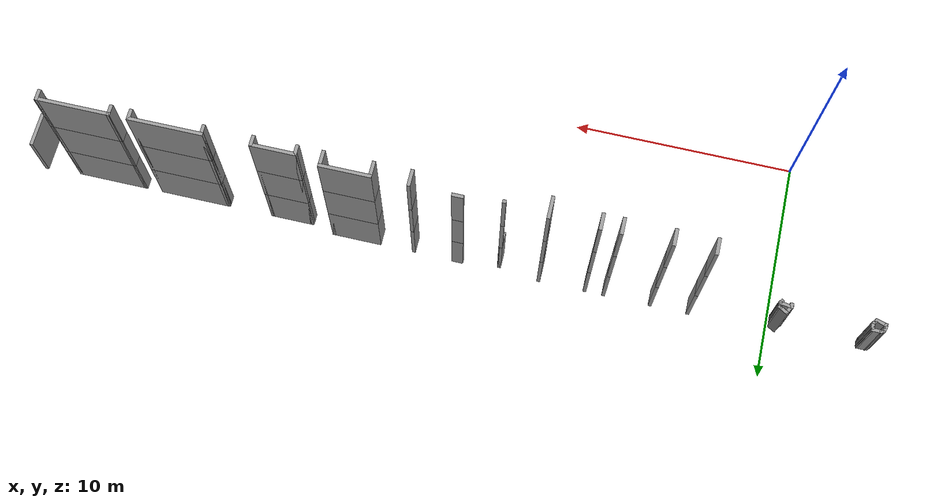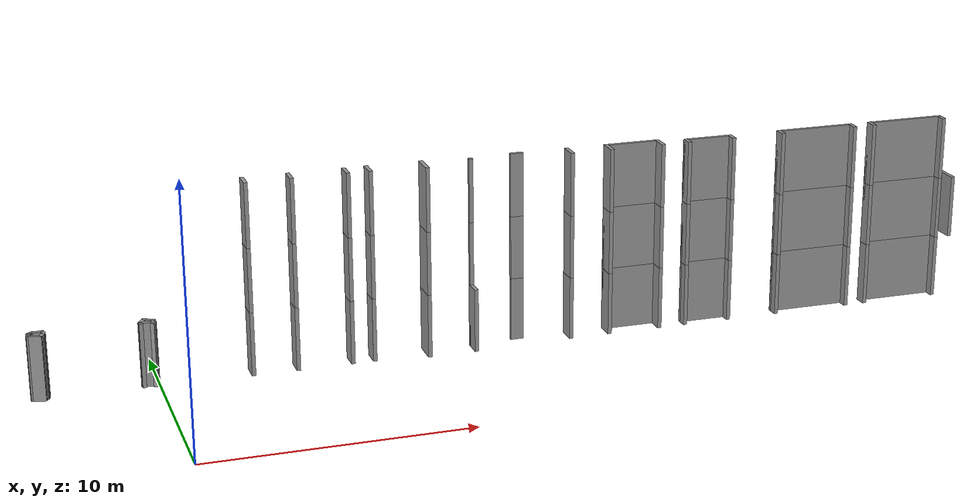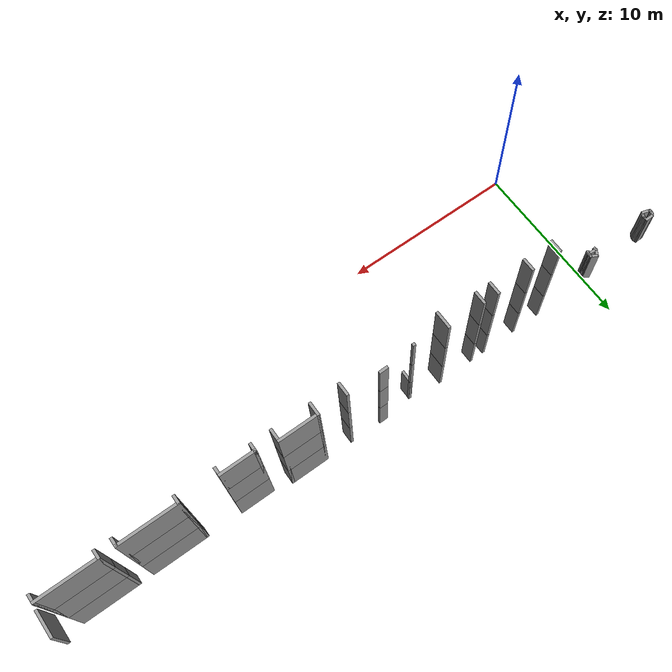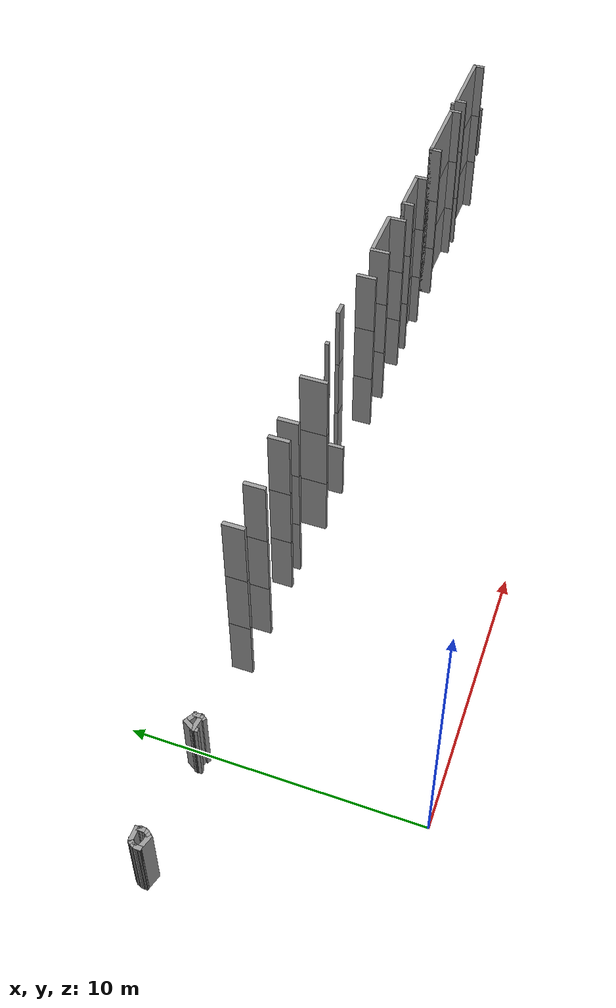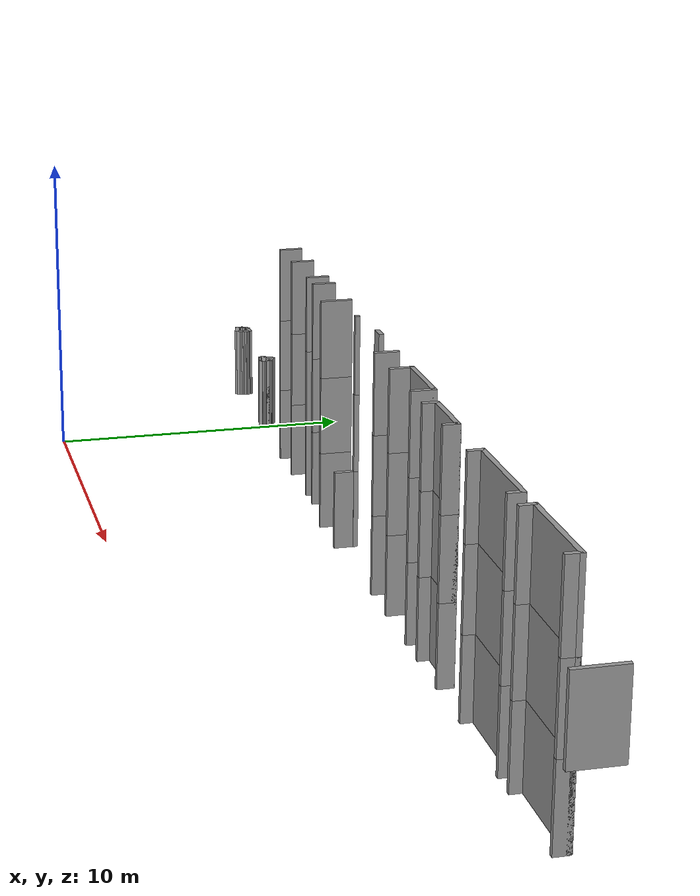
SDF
<sdf version="1.7">
 <model name="mapagazebo">
  <pose>-4.67869 9.01252 0 0 -0 0</pose>
  <link name="Wall_1126">
   <collision name="Wall_1126_Collision">
    <geometry><box><size>0.75 0.15 2.5</size></box></geometry>
    <pose>0 0 1.25 0 -0 0</pose>
   </collision>
   <visual name="Wall_1126_Visual">
    <pose>0 0 1.25 0 -0 0</pose>
    <geometry><box><size>0.75 0.15 2.5</size></box></geometry>
    <material>
     <script><uri>file://media/materials/scripts/gazebo.material</uri><name>Gazebo/Grey</name></script>
     <ambient>1 1 1 1</ambient>
    </material>
    <meta><layer>1</layer></meta>
   </visual>
   <pose>8.12733 -1.49706 2.5 0 -0 -1.5708</pose>
  </link>
  <link name="Wall_1129">
   <collision name="Wall_1129_Collision">
    <geometry><box><size>0.75 0.15 2.5</size></box></geometry>
    <pose>0 0 1.25 0 -0 0</pose>
   </collision>
   <visual name="Wall_1129_Visual">
    <pose>0 0 1.25 0 -0 0</pose>
    <geometry><box><size>0.75 0.15 2.5</size></box></geometry>
    <material>
     <script><uri>file://media/materials/scripts/gazebo.material</uri><name>Gazebo/Grey</name></script>
     <ambient>1 1 1 1</ambient>
    </material>
    <meta><layer>1</layer></meta>
   </visual>
   <pose>9.82733 -1.49706 2.5 0 -0 1.5708</pose>
  </link>
  <link name="Wall_1131">
   <collision name="Wall_1131_Collision">
    <geometry><box><size>0.75 0.15 2.5</size></box></geometry>
    <pose>0 0 1.25 0 -0 0</pose>
   </collision>
   <visual name="Wall_1131_Visual">
    <pose>0 0 1.25 0 -0 0</pose>
    <geometry><box><size>0.75 0.15 2.5</size></box></geometry>
    <material>
     <script><uri>file://media/materials/scripts/gazebo.material</uri><name>Gazebo/Grey</name></script>
     <ambient>1 1 1 1</ambient>
    </material>
    <meta><layer>1</layer></meta>
   </visual>
   <pose>11.9273 -1.49706 2.5 0 -0 -1.5708</pose>
  </link>
  <link name="Wall_1133">
   <collision name="Wall_1133_Collision">
    <geometry><box><size>0.75 0.15 2.5</size></box></geometry>
    <pose>0 0 1.25 0 -0 0</pose>
   </collision>
   <visual name="Wall_1133_Visual">
    <pose>0 0 1.25 0 -0 0</pose>
    <geometry><box><size>0.75 0.15 2.5</size></box></geometry>
    <material>
     <script><uri>file://media/materials/scripts/gazebo.material</uri><name>Gazebo/Grey</name></script>
     <ambient>1 1 1 1</ambient>
    </material>
    <meta><layer>1</layer></meta>
   </visual>
   <pose>12.7773 -1.49706 2.5 0 -0 1.5708</pose>
  </link>
  <link name="Wall_1135">
   <collision name="Wall_1135_Collision">
    <geometry><box><size>1 0.15 2.5</size></box></geometry>
    <pose>0 0 1.25 0 -0 0</pose>
   </collision>
   <visual name="Wall_1135_Visual">
    <pose>0 0 1.25 0 -0 0</pose>
    <geometry><box><size>1 0.15 2.5</size></box></geometry>
    <material>
     <script><uri>file://media/materials/scripts/gazebo.material</uri><name>Gazebo/Grey</name></script>
     <ambient>1 1 1 1</ambient>
    </material>
    <meta><layer>1</layer></meta>
   </visual>
   <pose>14.8773 -1.62206 2.5 0 -0 -1.5708</pose>
  </link>
  <link name="Wall_1138">
   <collision name="Wall_1138_Collision">
    <geometry><box><size>0.16 0.15 2.5</size></box></geometry>
    <pose>0 0 1.25 0 -0 0</pose>
   </collision>
   <visual name="Wall_1138_Visual">
    <pose>0 0 1.25 0 -0 0</pose>
    <geometry><box><size>0.16 0.15 2.5</size></box></geometry>
    <material>
     <script><uri>file://media/materials/scripts/gazebo.material</uri><name>Gazebo/Grey</name></script>
     <ambient>1 1 1 1</ambient>
    </material>
    <meta><layer>1</layer></meta>
   </visual>
   <pose>16.7323 -1.44706 2.5 0 -0 0</pose>
  </link>
  <link name="Wall_1139">
   <collision name="Wall_1139_Collision">
    <geometry><box><size>0.5 0.15 2.5</size></box></geometry>
    <pose>0 0 1.25 0 -0 0</pose>
   </collision>
   <visual name="Wall_1139_Visual">
    <pose>0 0 1.25 0 -0 0</pose>
    <geometry><box><size>0.5 0.15 2.5</size></box></geometry>
    <material>
     <script><uri>file://media/materials/scripts/gazebo.material</uri><name>Gazebo/Grey</name></script>
     <ambient>1 1 1 1</ambient>
    </material>
    <meta><layer>1</layer></meta>
   </visual>
   <pose>18.6018 -1.26676 2.5 0 -0 0</pose>
  </link>
  <link name="Wall_1157">
   <collision name="Wall_1157_Collision">
    <geometry><box><size>0.75 0.15 2.5</size></box></geometry>
    <pose>0 0 1.25 0 -0 0</pose>
   </collision>
   <visual name="Wall_1157_Visual">
    <pose>0 0 1.25 0 -0 0</pose>
    <geometry><box><size>0.75 0.15 2.5</size></box></geometry>
    <material>
     <script><uri>file://media/materials/scripts/gazebo.material</uri><name>Gazebo/Grey</name></script>
     <ambient>1 1 1 1</ambient>
    </material>
    <meta><layer>1</layer></meta>
   </visual>
   <pose>20.6212 -1.5985 2.5 0 -0 -1.5708</pose>
  </link>
  <link name="Wall_1160">
   <collision name="Wall_1160_Collision">
    <geometry><box><size>0.75 0.15 2.5</size></box></geometry>
    <pose>0 0 1.25 0 -0 0</pose>
   </collision>
   <visual name="Wall_1160_Visual">
    <pose>0 0 1.25 0 -0 0</pose>
    <geometry><box><size>0.75 0.15 2.5</size></box></geometry>
    <material>
     <script><uri>file://media/materials/scripts/gazebo.material</uri><name>Gazebo/Grey</name></script>
     <ambient>1 1 1 1</ambient>
    </material>
    <meta><layer>1</layer></meta>
   </visual>
   <pose>22.2212 -1.5985 2.5 0 -0 1.5708</pose>
  </link>
  <link name="Wall_1161">
   <collision name="Wall_1161_Collision">
    <geometry><box><size>2.25 0.15 2.5</size></box></geometry>
    <pose>0 0 1.25 0 -0 0</pose>
   </collision>
   <visual name="Wall_1161_Visual">
    <pose>0 0 1.25 0 -0 0</pose>
    <geometry><box><size>2.25 0.15 2.5</size></box></geometry>
    <material>
     <script><uri>file://media/materials/scripts/gazebo.material</uri><name>Gazebo/Grey</name></script>
     <ambient>1 1 1 1</ambient>
    </material>
    <meta><layer>1</layer></meta>
   </visual>
   <pose>23.2712 -1.2985 2.5 0 -0 0</pose>
  </link>
  <link name="Wall_1162">
   <collision name="Wall_1162_Collision">
    <geometry><box><size>0.75 0.15 2.5</size></box></geometry>
    <pose>0 0 1.25 0 -0 0</pose>
   </collision>
   <visual name="Wall_1162_Visual">
    <pose>0 0 1.25 0 -0 0</pose>
    <geometry><box><size>0.75 0.15 2.5</size></box></geometry>
    <material>
     <script><uri>file://media/materials/scripts/gazebo.material</uri><name>Gazebo/Grey</name></script>
     <ambient>1 1 1 1</ambient>
    </material>
    <meta><layer>1</layer></meta>
   </visual>
   <pose>24.3212 -1.5985 2.5 0 -0 -1.5708</pose>
  </link>
  <link name="Wall_1164">
   <collision name="Wall_1164_Collision">
    <geometry><box><size>0.5 0.15 2.5</size></box></geometry>
    <pose>0 0 1.25 0 -0 0</pose>
   </collision>
   <visual name="Wall_1164_Visual">
    <pose>0 0 1.25 0 -0 0</pose>
    <geometry><box><size>0.5 0.15 2.5</size></box></geometry>
    <material>
     <script><uri>file://media/materials/scripts/gazebo.material</uri><name>Gazebo/Grey</name></script>
     <ambient>1 1 1 1</ambient>
    </material>
    <meta><layer>1</layer></meta>
   </visual>
   <pose>25.4212 -1.7235 2.5 0 -0 1.5708</pose>
  </link>
  <link name="Wall_1165">
   <collision name="Wall_1165_Collision">
    <geometry><box><size>2 0.15 2.5</size></box></geometry>
    <pose>0 0 1.25 0 -0 0</pose>
   </collision>
   <visual name="Wall_1165_Visual">
    <pose>0 0 1.25 0 -0 0</pose>
    <geometry><box><size>2 0.15 2.5</size></box></geometry>
    <material>
     <script><uri>file://media/materials/scripts/gazebo.material</uri><name>Gazebo/Grey</name></script>
     <ambient>1 1 1 1</ambient>
    </material>
    <meta><layer>1</layer></meta>
   </visual>
   <pose>26.3462 -1.5485 2.5 0 -0 0</pose>
  </link>
  <link name="Wall_1166">
   <collision name="Wall_1166_Collision">
    <geometry><box><size>0.5 0.15 2.5</size></box></geometry>
    <pose>0 0 1.25 0 -0 0</pose>
   </collision>
   <visual name="Wall_1166_Visual">
    <pose>0 0 1.25 0 -0 0</pose>
    <geometry><box><size>0.5 0.15 2.5</size></box></geometry>
    <material>
     <script><uri>file://media/materials/scripts/gazebo.material</uri><name>Gazebo/Grey</name></script>
     <ambient>1 1 1 1</ambient>
    </material>
    <meta><layer>1</layer></meta>
   </visual>
   <pose>27.2712 -1.7235 2.5 0 -0 -1.5708</pose>
  </link>
  <link name="Wall_1168">
   <collision name="Wall_1168_Collision">
    <geometry><box><size>0.5 0.15 2.5</size></box></geometry>
    <pose>0 0 1.25 0 -0 0</pose>
   </collision>
   <visual name="Wall_1168_Visual">
    <pose>0 0 1.25 0 -0 0</pose>
    <geometry><box><size>0.5 0.15 2.5</size></box></geometry>
    <material>
     <script><uri>file://media/materials/scripts/gazebo.material</uri><name>Gazebo/Grey</name></script>
     <ambient>1 1 1 1</ambient>
    </material>
    <meta><layer>1</layer></meta>
   </visual>
   <pose>29.3712 -1.7235 2.5 0 -0 1.5708</pose>
  </link>
  <link name="Wall_1169">
   <collision name="Wall_1169_Collision">
    <geometry><box><size>3.25 0.15 2.5</size></box></geometry>
    <pose>0 0 1.25 0 -0 0</pose>
   </collision>
   <visual name="Wall_1169_Visual">
    <pose>0 0 1.25 0 -0 0</pose>
    <geometry><box><size>3.25 0.15 2.5</size></box></geometry>
    <material>
     <script><uri>file://media/materials/scripts/gazebo.material</uri><name>Gazebo/Grey</name></script>
     <ambient>1 1 1 1</ambient>
    </material>
    <meta><layer>1</layer></meta>
   </visual>
   <pose>30.9212 -1.5485 2.5 0 -0 0</pose>
  </link>
  <link name="Wall_1170">
   <collision name="Wall_1170_Collision">
    <geometry><box><size>0.5 0.15 2.5</size></box></geometry>
    <pose>0 0 1.25 0 -0 0</pose>
   </collision>
   <visual name="Wall_1170_Visual">
    <pose>0 0 1.25 0 -0 0</pose>
    <geometry><box><size>0.5 0.15 2.5</size></box></geometry>
    <material>
     <script><uri>file://media/materials/scripts/gazebo.material</uri><name>Gazebo/Grey</name></script>
     <ambient>1 1 1 1</ambient>
    </material>
    <meta><layer>1</layer></meta>
   </visual>
   <pose>32.4712 -1.7235 2.5 0 -0 -1.5708</pose>
  </link>
  <link name="Wall_1172">
   <collision name="Wall_1172_Collision">
    <geometry><box><size>0.5 0.15 2.5</size></box></geometry>
    <pose>0 0 1.25 0 -0 0</pose>
   </collision>
   <visual name="Wall_1172_Visual">
    <pose>0 0 1.25 0 -0 0</pose>
    <geometry><box><size>0.5 0.15 2.5</size></box></geometry>
    <material>
     <script><uri>file://media/materials/scripts/gazebo.material</uri><name>Gazebo/Grey</name></script>
     <ambient>1 1 1 1</ambient>
    </material>
    <meta><layer>1</layer></meta>
   </visual>
   <pose>33.3212 -1.7235 2.5 0 -0 1.5708</pose>
  </link>
  <link name="Wall_1173">
   <collision name="Wall_1173_Collision">
    <geometry><box><size>3.25 0.15 2.5</size></box></geometry>
    <pose>0 0 1.25 0 -0 0</pose>
   </collision>
   <visual name="Wall_1173_Visual">
    <pose>0 0 1.25 0 -0 0</pose>
    <geometry><box><size>3.25 0.15 2.5</size></box></geometry>
    <material>
     <script><uri>file://media/materials/scripts/gazebo.material</uri><name>Gazebo/Grey</name></script>
     <ambient>1 1 1 1</ambient>
    </material>
    <meta><layer>1</layer></meta>
   </visual>
   <pose>34.8712 -1.5485 2.5 0 -0 0</pose>
  </link>
  <link name="Wall_1174">
   <collision name="Wall_1174_Collision">
    <geometry><box><size>0.5 0.15 2.5</size></box></geometry>
    <pose>0 0 1.25 0 -0 0</pose>
   </collision>
   <visual name="Wall_1174_Visual">
    <pose>0 0 1.25 0 -0 0</pose>
    <geometry><box><size>0.5 0.15 2.5</size></box></geometry>
    <material>
     <script><uri>file://media/materials/scripts/gazebo.material</uri><name>Gazebo/Grey</name></script>
     <ambient>1 1 1 1</ambient>
    </material>
    <meta><layer>1</layer></meta>
   </visual>
   <pose>36.4212 -1.7235 2.5 0 -0 -1.5708</pose>
  </link>
  <link name="Wall_1176">
   <collision name="Wall_1176_Collision">
    <geometry><box><size>1.5 0.15 2.5</size></box></geometry>
    <pose>0 0 1.25 0 -0 0</pose>
   </collision>
   <visual name="Wall_1176_Visual">
    <pose>0 0 1.25 0 -0 0</pose>
    <geometry><box><size>1.5 0.15 2.5</size></box></geometry>
    <material>
     <script><uri>file://media/materials/scripts/gazebo.material</uri><name>Gazebo/Grey</name></script>
     <ambient>1 1 1 1</ambient>
    </material>
    <meta><layer>1</layer></meta>
   </visual>
   <pose>37.0212 -1.2235 2.5 0 -0 1.5708</pose>
  </link>
  <link name="Wall_1750">
   <collision name="Wall_1750_Collision">
    <geometry><box><size>0.75 0.15 2.5</size></box></geometry>
    <pose>0 0 1.25 0 -0 0</pose>
   </collision>
   <visual name="Wall_1750_Visual">
    <pose>0 0 1.25 0 -0 0</pose>
    <geometry><box><size>0.75 0.15 2.5</size></box></geometry>
    <material>
     <script><uri>file://media/materials/scripts/gazebo.material</uri><name>Gazebo/Grey</name></script>
     <ambient>1 1 1 1</ambient>
    </material>
    <meta><layer>2</layer></meta>
   </visual>
   <pose>8.12733 -1.49706 5 0 -0 -1.5708</pose>
  </link>
  <link name="Wall_1753">
   <collision name="Wall_1753_Collision">
    <geometry><box><size>0.75 0.15 2.5</size></box></geometry>
    <pose>0 0 1.25 0 -0 0</pose>
   </collision>
   <visual name="Wall_1753_Visual">
    <pose>0 0 1.25 0 -0 0</pose>
    <geometry><box><size>0.75 0.15 2.5</size></box></geometry>
    <material>
     <script><uri>file://media/materials/scripts/gazebo.material</uri><name>Gazebo/Grey</name></script>
     <ambient>1 1 1 1</ambient>
    </material>
    <meta><layer>2</layer></meta>
   </visual>
   <pose>9.82733 -1.49706 5 0 -0 1.5708</pose>
  </link>
  <link name="Wall_1755">
   <collision name="Wall_1755_Collision">
    <geometry><box><size>0.75 0.15 2.5</size></box></geometry>
    <pose>0 0 1.25 0 -0 0</pose>
   </collision>
   <visual name="Wall_1755_Visual">
    <pose>0 0 1.25 0 -0 0</pose>
    <geometry><box><size>0.75 0.15 2.5</size></box></geometry>
    <material>
     <script><uri>file://media/materials/scripts/gazebo.material</uri><name>Gazebo/Grey</name></script>
     <ambient>1 1 1 1</ambient>
    </material>
    <meta><layer>2</layer></meta>
   </visual>
   <pose>11.9273 -1.49706 5 0 -0 -1.5708</pose>
  </link>
  <link name="Wall_1757">
   <collision name="Wall_1757_Collision">
    <geometry><box><size>0.75 0.15 2.5</size></box></geometry>
    <pose>0 0 1.25 0 -0 0</pose>
   </collision>
   <visual name="Wall_1757_Visual">
    <pose>0 0 1.25 0 -0 0</pose>
    <geometry><box><size>0.75 0.15 2.5</size></box></geometry>
    <material>
     <script><uri>file://media/materials/scripts/gazebo.material</uri><name>Gazebo/Grey</name></script>
     <ambient>1 1 1 1</ambient>
    </material>
    <meta><layer>2</layer></meta>
   </visual>
   <pose>12.7773 -1.49706 5 0 -0 1.5708</pose>
  </link>
  <link name="Wall_1759">
   <collision name="Wall_1759_Collision">
    <geometry><box><size>1 0.15 2.5</size></box></geometry>
    <pose>0 0 1.25 0 -0 0</pose>
   </collision>
   <visual name="Wall_1759_Visual">
    <pose>0 0 1.25 0 -0 0</pose>
    <geometry><box><size>1 0.15 2.5</size></box></geometry>
    <material>
     <script><uri>file://media/materials/scripts/gazebo.material</uri><name>Gazebo/Grey</name></script>
     <ambient>1 1 1 1</ambient>
    </material>
    <meta><layer>2</layer></meta>
   </visual>
   <pose>14.8773 -1.62206 5 0 -0 -1.5708</pose>
  </link>
  <link name="Wall_1762">
   <collision name="Wall_1762_Collision">
    <geometry><box><size>0.16 0.15 2.5</size></box></geometry>
    <pose>0 0 1.25 0 -0 0</pose>
   </collision>
   <visual name="Wall_1762_Visual">
    <pose>0 0 1.25 0 -0 0</pose>
    <geometry><box><size>0.16 0.15 2.5</size></box></geometry>
    <material>
     <script><uri>file://media/materials/scripts/gazebo.material</uri><name>Gazebo/Grey</name></script>
     <ambient>1 1 1 1</ambient>
    </material>
    <meta><layer>2</layer></meta>
   </visual>
   <pose>16.7323 -1.44706 5 0 -0 0</pose>
  </link>
  <link name="Wall_1763">
   <collision name="Wall_1763_Collision">
    <geometry><box><size>0.5 0.15 2.5</size></box></geometry>
    <pose>0 0 1.25 0 -0 0</pose>
   </collision>
   <visual name="Wall_1763_Visual">
    <pose>0 0 1.25 0 -0 0</pose>
    <geometry><box><size>0.5 0.15 2.5</size></box></geometry>
    <material>
     <script><uri>file://media/materials/scripts/gazebo.material</uri><name>Gazebo/Grey</name></script>
     <ambient>1 1 1 1</ambient>
    </material>
    <meta><layer>2</layer></meta>
   </visual>
   <pose>18.6018 -1.26676 5 0 -0 0</pose>
  </link>
  <link name="Wall_1781">
   <collision name="Wall_1781_Collision">
    <geometry><box><size>0.75 0.15 2.5</size></box></geometry>
    <pose>0 0 1.25 0 -0 0</pose>
   </collision>
   <visual name="Wall_1781_Visual">
    <pose>0 0 1.25 0 -0 0</pose>
    <geometry><box><size>0.75 0.15 2.5</size></box></geometry>
    <material>
     <script><uri>file://media/materials/scripts/gazebo.material</uri><name>Gazebo/Grey</name></script>
     <ambient>1 1 1 1</ambient>
    </material>
    <meta><layer>2</layer></meta>
   </visual>
   <pose>20.6212 -1.5985 5 0 -0 -1.5708</pose>
  </link>
  <link name="Wall_1784">
   <collision name="Wall_1784_Collision">
    <geometry><box><size>0.75 0.15 2.5</size></box></geometry>
    <pose>0 0 1.25 0 -0 0</pose>
   </collision>
   <visual name="Wall_1784_Visual">
    <pose>0 0 1.25 0 -0 0</pose>
    <geometry><box><size>0.75 0.15 2.5</size></box></geometry>
    <material>
     <script><uri>file://media/materials/scripts/gazebo.material</uri><name>Gazebo/Grey</name></script>
     <ambient>1 1 1 1</ambient>
    </material>
    <meta><layer>2</layer></meta>
   </visual>
   <pose>22.2212 -1.5985 5 0 -0 1.5708</pose>
  </link>
  <link name="Wall_1785">
   <collision name="Wall_1785_Collision">
    <geometry><box><size>2.25 0.15 2.5</size></box></geometry>
    <pose>0 0 1.25 0 -0 0</pose>
   </collision>
   <visual name="Wall_1785_Visual">
    <pose>0 0 1.25 0 -0 0</pose>
    <geometry><box><size>2.25 0.15 2.5</size></box></geometry>
    <material>
     <script><uri>file://media/materials/scripts/gazebo.material</uri><name>Gazebo/Grey</name></script>
     <ambient>1 1 1 1</ambient>
    </material>
    <meta><layer>2</layer></meta>
   </visual>
   <pose>23.2712 -1.2985 5 0 -0 0</pose>
  </link>
  <link name="Wall_1786">
   <collision name="Wall_1786_Collision">
    <geometry><box><size>0.75 0.15 2.5</size></box></geometry>
    <pose>0 0 1.25 0 -0 0</pose>
   </collision>
   <visual name="Wall_1786_Visual">
    <pose>0 0 1.25 0 -0 0</pose>
    <geometry><box><size>0.75 0.15 2.5</size></box></geometry>
    <material>
     <script><uri>file://media/materials/scripts/gazebo.material</uri><name>Gazebo/Grey</name></script>
     <ambient>1 1 1 1</ambient>
    </material>
    <meta><layer>2</layer></meta>
   </visual>
   <pose>24.3212 -1.5985 5 0 -0 -1.5708</pose>
  </link>
  <link name="Wall_1788">
   <collision name="Wall_1788_Collision">
    <geometry><box><size>0.5 0.15 2.5</size></box></geometry>
    <pose>0 0 1.25 0 -0 0</pose>
   </collision>
   <visual name="Wall_1788_Visual">
    <pose>0 0 1.25 0 -0 0</pose>
    <geometry><box><size>0.5 0.15 2.5</size></box></geometry>
    <material>
     <script><uri>file://media/materials/scripts/gazebo.material</uri><name>Gazebo/Grey</name></script>
     <ambient>1 1 1 1</ambient>
    </material>
    <meta><layer>2</layer></meta>
   </visual>
   <pose>25.4212 -1.7235 5 0 -0 1.5708</pose>
  </link>
  <link name="Wall_1789">
   <collision name="Wall_1789_Collision">
    <geometry><box><size>2 0.15 2.5</size></box></geometry>
    <pose>0 0 1.25 0 -0 0</pose>
   </collision>
   <visual name="Wall_1789_Visual">
    <pose>0 0 1.25 0 -0 0</pose>
    <geometry><box><size>2 0.15 2.5</size></box></geometry>
    <material>
     <script><uri>file://media/materials/scripts/gazebo.material</uri><name>Gazebo/Grey</name></script>
     <ambient>1 1 1 1</ambient>
    </material>
    <meta><layer>2</layer></meta>
   </visual>
   <pose>26.3462 -1.5485 5 0 -0 0</pose>
  </link>
  <link name="Wall_1790">
   <collision name="Wall_1790_Collision">
    <geometry><box><size>0.5 0.15 2.5</size></box></geometry>
    <pose>0 0 1.25 0 -0 0</pose>
   </collision>
   <visual name="Wall_1790_Visual">
    <pose>0 0 1.25 0 -0 0</pose>
    <geometry><box><size>0.5 0.15 2.5</size></box></geometry>
    <material>
     <script><uri>file://media/materials/scripts/gazebo.material</uri><name>Gazebo/Grey</name></script>
     <ambient>1 1 1 1</ambient>
    </material>
    <meta><layer>2</layer></meta>
   </visual>
   <pose>27.2712 -1.7235 5 0 -0 -1.5708</pose>
  </link>
  <link name="Wall_1792">
   <collision name="Wall_1792_Collision">
    <geometry><box><size>0.5 0.15 2.5</size></box></geometry>
    <pose>0 0 1.25 0 -0 0</pose>
   </collision>
   <visual name="Wall_1792_Visual">
    <pose>0 0 1.25 0 -0 0</pose>
    <geometry><box><size>0.5 0.15 2.5</size></box></geometry>
    <material>
     <script><uri>file://media/materials/scripts/gazebo.material</uri><name>Gazebo/Grey</name></script>
     <ambient>1 1 1 1</ambient>
    </material>
    <meta><layer>2</layer></meta>
   </visual>
   <pose>29.3712 -1.7235 5 0 -0 1.5708</pose>
  </link>
  <link name="Wall_1793">
   <collision name="Wall_1793_Collision">
    <geometry><box><size>3.25 0.15 2.5</size></box></geometry>
    <pose>0 0 1.25 0 -0 0</pose>
   </collision>
   <visual name="Wall_1793_Visual">
    <pose>0 0 1.25 0 -0 0</pose>
    <geometry><box><size>3.25 0.15 2.5</size></box></geometry>
    <material>
     <script><uri>file://media/materials/scripts/gazebo.material</uri><name>Gazebo/Grey</name></script>
     <ambient>1 1 1 1</ambient>
    </material>
    <meta><layer>2</layer></meta>
   </visual>
   <pose>30.9212 -1.5485 5 0 -0 0</pose>
  </link>
  <link name="Wall_1794">
   <collision name="Wall_1794_Collision">
    <geometry><box><size>0.5 0.15 2.5</size></box></geometry>
    <pose>0 0 1.25 0 -0 0</pose>
   </collision>
   <visual name="Wall_1794_Visual">
    <pose>0 0 1.25 0 -0 0</pose>
    <geometry><box><size>0.5 0.15 2.5</size></box></geometry>
    <material>
     <script><uri>file://media/materials/scripts/gazebo.material</uri><name>Gazebo/Grey</name></script>
     <ambient>1 1 1 1</ambient>
    </material>
    <meta><layer>2</layer></meta>
   </visual>
   <pose>32.4712 -1.7235 5 0 -0 -1.5708</pose>
  </link>
  <link name="Wall_1796">
   <collision name="Wall_1796_Collision">
    <geometry><box><size>0.5 0.15 2.5</size></box></geometry>
    <pose>0 0 1.25 0 -0 0</pose>
   </collision>
   <visual name="Wall_1796_Visual">
    <pose>0 0 1.25 0 -0 0</pose>
    <geometry><box><size>0.5 0.15 2.5</size></box></geometry>
    <material>
     <script><uri>file://media/materials/scripts/gazebo.material</uri><name>Gazebo/Grey</name></script>
     <ambient>1 1 1 1</ambient>
    </material>
    <meta><layer>2</layer></meta>
   </visual>
   <pose>33.3212 -1.7235 5 0 -0 1.5708</pose>
  </link>
  <link name="Wall_1797">
   <collision name="Wall_1797_Collision">
    <geometry><box><size>3.25 0.15 2.5</size></box></geometry>
    <pose>0 0 1.25 0 -0 0</pose>
   </collision>
   <visual name="Wall_1797_Visual">
    <pose>0 0 1.25 0 -0 0</pose>
    <geometry><box><size>3.25 0.15 2.5</size></box></geometry>
    <material>
     <script><uri>file://media/materials/scripts/gazebo.material</uri><name>Gazebo/Grey</name></script>
     <ambient>1 1 1 1</ambient>
    </material>
    <meta><layer>2</layer></meta>
   </visual>
   <pose>34.8712 -1.5485 5 0 -0 0</pose>
  </link>
  <link name="Wall_1798">
   <collision name="Wall_1798_Collision">
    <geometry><box><size>0.5 0.15 2.5</size></box></geometry>
    <pose>0 0 1.25 0 -0 0</pose>
   </collision>
   <visual name="Wall_1798_Visual">
    <pose>0 0 1.25 0 -0 0</pose>
    <geometry><box><size>0.5 0.15 2.5</size></box></geometry>
    <material>
     <script><uri>file://media/materials/scripts/gazebo.material</uri><name>Gazebo/Grey</name></script>
     <ambient>1 1 1 1</ambient>
    </material>
    <meta><layer>2</layer></meta>
   </visual>
   <pose>36.4212 -1.7235 5 0 -0 -1.5708</pose>
  </link>
  <link name="Wall_2216">
   <collision name="Wall_2216_Collision">
    <geometry><box><size>0.25 0.15 2.5</size></box></geometry>
    <pose>0 0 1.25 0 -0 0</pose>
   </collision>
   <visual name="Wall_2216_Visual">
    <pose>0 0 1.25 0 -0 0</pose>
    <geometry><box><size>0.25 0.15 2.5</size></box></geometry>
    <material>
     <script><uri>file://media/materials/scripts/gazebo.material</uri><name>Gazebo/Grey</name></script>
     <ambient>1 1 1 1</ambient>
    </material>
    <meta><layer>0</layer></meta>
   </visual>
   <pose>0.090304 -1.62489 0 0 -0 1.5708</pose>
  </link>
  <link name="Wall_2217">
   <collision name="Wall_2217_Collision">
    <geometry><box><size>0.25 0.15 2.5</size></box></geometry>
    <pose>0 0 1.25 0 -0 0</pose>
   </collision>
   <visual name="Wall_2217_Visual">
    <pose>0 0 1.25 0 -0 0</pose>
    <geometry><box><size>0.25 0.15 2.5</size></box></geometry>
    <material>
     <script><uri>file://media/materials/scripts/gazebo.material</uri><name>Gazebo/Grey</name></script>
     <ambient>1 1 1 1</ambient>
    </material>
    <meta><layer>0</layer></meta>
   </visual>
   <pose>0.103245 -1.5266 0 0 -0 1.309</pose>
  </link>
  <link name="Wall_2218">
   <collision name="Wall_2218_Collision">
    <geometry><box><size>0.25 0.15 2.5</size></box></geometry>
    <pose>0 0 1.25 0 -0 0</pose>
   </collision>
   <visual name="Wall_2218_Visual">
    <pose>0 0 1.25 0 -0 0</pose>
    <geometry><box><size>0.25 0.15 2.5</size></box></geometry>
    <material>
     <script><uri>file://media/materials/scripts/gazebo.material</uri><name>Gazebo/Grey</name></script>
     <ambient>1 1 1 1</ambient>
    </material>
    <meta><layer>0</layer></meta>
   </visual>
   <pose>0.141186 -1.435 0 0 -0 1.0472</pose>
  </link>
  <link name="Wall_2219">
   <collision name="Wall_2219_Collision">
    <geometry><box><size>0.25 0.15 2.5</size></box></geometry>
    <pose>0 0 1.25 0 -0 0</pose>
   </collision>
   <visual name="Wall_2219_Visual">
    <pose>0 0 1.25 0 -0 0</pose>
    <geometry><box><size>0.25 0.15 2.5</size></box></geometry>
    <material>
     <script><uri>file://media/materials/scripts/gazebo.material</uri><name>Gazebo/Grey</name></script>
     <ambient>1 1 1 1</ambient>
    </material>
    <meta><layer>0</layer></meta>
   </visual>
   <pose>0.209487 -1.3667 0 0 -0 0.523599</pose>
  </link>
  <link name="Wall_2220">
   <collision name="Wall_2220_Collision">
    <geometry><box><size>0.5 0.15 2.5</size></box></geometry>
    <pose>0 0 1.25 0 -0 0</pose>
   </collision>
   <visual name="Wall_2220_Visual">
    <pose>0 0 1.25 0 -0 0</pose>
    <geometry><box><size>0.5 0.15 2.5</size></box></geometry>
    <material>
     <script><uri>file://media/materials/scripts/gazebo.material</uri><name>Gazebo/Grey</name></script>
     <ambient>1 1 1 1</ambient>
    </material>
    <meta><layer>0</layer></meta>
   </visual>
   <pose>0.427788 -1.3417 0 0 -0 0</pose>
  </link>
  <link name="Wall_2221">
   <collision name="Wall_2221_Collision">
    <geometry><box><size>0.25 0.15 2.5</size></box></geometry>
    <pose>0 0 1.25 0 -0 0</pose>
   </collision>
   <visual name="Wall_2221_Visual">
    <pose>0 0 1.25 0 -0 0</pose>
    <geometry><box><size>0.25 0.15 2.5</size></box></geometry>
    <material>
     <script><uri>file://media/materials/scripts/gazebo.material</uri><name>Gazebo/Grey</name></script>
     <ambient>1 1 1 1</ambient>
    </material>
    <meta><layer>0</layer></meta>
   </visual>
   <pose>0.615729 -1.38999 0 0 -0 -1.309</pose>
  </link>
  <link name="Wall_2222">
   <collision name="Wall_2222_Collision">
    <geometry><box><size>0.25 0.15 2.5</size></box></geometry>
    <pose>0 0 1.25 0 -0 0</pose>
   </collision>
   <visual name="Wall_2222_Visual">
    <pose>0 0 1.25 0 -0 0</pose>
    <geometry><box><size>0.25 0.15 2.5</size></box></geometry>
    <material>
     <script><uri>file://media/materials/scripts/gazebo.material</uri><name>Gazebo/Grey</name></script>
     <ambient>1 1 1 1</ambient>
    </material>
    <meta><layer>0</layer></meta>
   </visual>
   <pose>0.62867 -1.48829 0 0 -0 -1.5708</pose>
  </link>
  <link name="Wall_2223">
   <collision name="Wall_2223_Collision">
    <geometry><box><size>0.25 0.15 2.5</size></box></geometry>
    <pose>0 0 1.25 0 -0 0</pose>
   </collision>
   <visual name="Wall_2223_Visual">
    <pose>0 0 1.25 0 -0 0</pose>
    <geometry><box><size>0.25 0.15 2.5</size></box></geometry>
    <material>
     <script><uri>file://media/materials/scripts/gazebo.material</uri><name>Gazebo/Grey</name></script>
     <ambient>1 1 1 1</ambient>
    </material>
    <meta><layer>0</layer></meta>
   </visual>
   <pose>0.615729 -1.58659 0 0 -0 -1.8326</pose>
  </link>
  <link name="Wall_2224">
   <collision name="Wall_2224_Collision">
    <geometry><box><size>0.25 0.15 2.5</size></box></geometry>
    <pose>0 0 1.25 0 -0 0</pose>
   </collision>
   <visual name="Wall_2224_Visual">
    <pose>0 0 1.25 0 -0 0</pose>
    <geometry><box><size>0.25 0.15 2.5</size></box></geometry>
    <material>
     <script><uri>file://media/materials/scripts/gazebo.material</uri><name>Gazebo/Grey</name></script>
     <ambient>1 1 1 1</ambient>
    </material>
    <meta><layer>0</layer></meta>
   </visual>
   <pose>0.577788 -1.67818 0 0 -0 -2.0944</pose>
  </link>
  <link name="Wall_2226">
   <collision name="Wall_2226_Collision">
    <geometry><box><size>0.558958 0.15 2.5</size></box></geometry>
    <pose>0 0 1.25 0 -0 0</pose>
   </collision>
   <visual name="Wall_2226_Visual">
    <pose>0 0 1.25 0 -0 0</pose>
    <geometry><box><size>0.558958 0.15 2.5</size></box></geometry>
    <material>
     <script><uri>file://media/materials/scripts/gazebo.material</uri><name>Gazebo/Grey</name></script>
     <ambient>1 1 1 1</ambient>
    </material>
    <meta><layer>0</layer></meta>
   </visual>
   <pose>0.286191 -1.73354 0 0 -0 2.85067</pose>
  </link>
  <link name="Wall_2227">
   <collision name="Wall_2227_Collision">
    <geometry><box><size>0.15 0.15 2.5</size></box></geometry>
    <pose>0 0 1.25 0 -0 0</pose>
   </collision>
   <visual name="Wall_2227_Visual">
    <pose>0 0 1.25 0 -0 0</pose>
    <geometry><box><size>0.15 0.15 2.5</size></box></geometry>
    <material>
     <script><uri>file://media/materials/scripts/gazebo.material</uri><name>Gazebo/Grey</name></script>
     <ambient>1 1 1 1</ambient>
    </material>
    <meta><layer>0</layer></meta>
   </visual>
   <pose>0.090304 -1.67489 0 0 -0 0</pose>
  </link>
  <link name="Wall_2229">
   <collision name="Wall_2229_Collision">
    <geometry><box><size>0.25 0.15 2.5</size></box></geometry>
    <pose>0 0 1.25 0 -0 0</pose>
   </collision>
   <visual name="Wall_2229_Visual">
    <pose>0 0 1.25 0 -0 0</pose>
    <geometry><box><size>0.25 0.15 2.5</size></box></geometry>
    <material>
     <script><uri>file://media/materials/scripts/gazebo.material</uri><name>Gazebo/Grey</name></script>
     <ambient>1 1 1 1</ambient>
    </material>
    <meta><layer>0</layer></meta>
   </visual>
   <pose>4.09788 -1.62343 0 0 -0 1.5708</pose>
  </link>
  <link name="Wall_2230">
   <collision name="Wall_2230_Collision">
    <geometry><box><size>0.5 0.15 2.5</size></box></geometry>
    <pose>0 0 1.25 0 -0 0</pose>
   </collision>
   <visual name="Wall_2230_Visual">
    <pose>0 0 1.25 0 -0 0</pose>
    <geometry><box><size>0.5 0.15 2.5</size></box></geometry>
    <material>
     <script><uri>file://media/materials/scripts/gazebo.material</uri><name>Gazebo/Grey</name></script>
     <ambient>1 1 1 1</ambient>
    </material>
    <meta><layer>0</layer></meta>
   </visual>
   <pose>4.18538 -1.42188 0 0 -0 1.0472</pose>
  </link>
  <link name="Wall_2231">
   <collision name="Wall_2231_Collision">
    <geometry><box><size>0.5 0.15 2.5</size></box></geometry>
    <pose>0 0 1.25 0 -0 0</pose>
   </collision>
   <visual name="Wall_2231_Visual">
    <pose>0 0 1.25 0 -0 0</pose>
    <geometry><box><size>0.5 0.15 2.5</size></box></geometry>
    <material>
     <script><uri>file://media/materials/scripts/gazebo.material</uri><name>Gazebo/Grey</name></script>
     <ambient>1 1 1 1</ambient>
    </material>
    <meta><layer>0</layer></meta>
   </visual>
   <pose>4.42444 -1.35782 0 0 -0 -0.523599</pose>
  </link>
  <link name="Wall_2232">
   <collision name="Wall_2232_Collision">
    <geometry><box><size>0.25 0.15 2.5</size></box></geometry>
    <pose>0 0 1.25 0 -0 0</pose>
   </collision>
   <visual name="Wall_2232_Visual">
    <pose>0 0 1.25 0 -0 0</pose>
    <geometry><box><size>0.25 0.15 2.5</size></box></geometry>
    <material>
     <script><uri>file://media/materials/scripts/gazebo.material</uri><name>Gazebo/Grey</name></script>
     <ambient>1 1 1 1</ambient>
    </material>
    <meta><layer>0</layer></meta>
   </visual>
   <pose>4.57599 -1.49532 0 0 -0 -1.5708</pose>
  </link>
  <link name="Wall_2233">
   <collision name="Wall_2233_Collision">
    <geometry><box><size>0.25 0.15 2.5</size></box></geometry>
    <pose>0 0 1.25 0 -0 0</pose>
   </collision>
   <visual name="Wall_2233_Visual">
    <pose>0 0 1.25 0 -0 0</pose>
    <geometry><box><size>0.25 0.15 2.5</size></box></geometry>
    <material>
     <script><uri>file://media/materials/scripts/gazebo.material</uri><name>Gazebo/Grey</name></script>
     <ambient>1 1 1 1</ambient>
    </material>
    <meta><layer>0</layer></meta>
   </visual>
   <pose>4.57599 -1.59532 0 0 -0 -1.5708</pose>
  </link>
  <link name="Wall_2234">
   <collision name="Wall_2234_Collision">
    <geometry><box><size>0.25 0.15 2.5</size></box></geometry>
    <pose>0 0 1.25 0 -0 0</pose>
   </collision>
   <visual name="Wall_2234_Visual">
    <pose>0 0 1.25 0 -0 0</pose>
    <geometry><box><size>0.25 0.15 2.5</size></box></geometry>
    <material>
     <script><uri>file://media/materials/scripts/gazebo.material</uri><name>Gazebo/Grey</name></script>
     <ambient>1 1 1 1</ambient>
    </material>
    <meta><layer>0</layer></meta>
   </visual>
   <pose>4.55099 -1.68863 0 0 -0 -2.0944</pose>
  </link>
  <link name="Wall_2236">
   <collision name="Wall_2236_Collision">
    <geometry><box><size>0.633484 0.15 2.5</size></box></geometry>
    <pose>0 0 1.25 0 -0 0</pose>
   </collision>
   <visual name="Wall_2236_Visual">
    <pose>0 0 1.25 0 -0 0</pose>
    <geometry><box><size>0.633484 0.15 2.5</size></box></geometry>
    <material>
     <script><uri>file://media/materials/scripts/gazebo.material</uri><name>Gazebo/Grey</name></script>
     <ambient>1 1 1 1</ambient>
    </material>
    <meta><layer>0</layer></meta>
   </visual>
   <pose>4.33694 -1.60938 0 0 -0 -0.149247</pose>
  </link>
  <link name="Wall_2237">
   <collision name="Wall_2237_Collision">
    <geometry><box><size>0.25 0.15 2.5</size></box></geometry>
    <pose>0 0 1.25 0 -0 0</pose>
   </collision>
   <visual name="Wall_2237_Visual">
    <pose>0 0 1.25 0 -0 0</pose>
    <geometry><box><size>0.25 0.15 2.5</size></box></geometry>
    <material>
     <script><uri>file://media/materials/scripts/gazebo.material</uri><name>Gazebo/Grey</name></script>
     <ambient>1 1 1 1</ambient>
    </material>
    <meta><layer>0</layer></meta>
   </visual>
   <pose>4.55099 -1.68863 0 0 -0 -2.0944</pose>
  </link>
  <link name="Wall_433">
   <collision name="Wall_433_Collision">
    <geometry><box><size>0.75 0.15 2.5</size></box></geometry>
    <pose>0 0 1.25 0 -0 0</pose>
   </collision>
   <visual name="Wall_433_Visual">
    <pose>0 0 1.25 0 -0 0</pose>
    <geometry><box><size>0.75 0.15 2.5</size></box></geometry>
    <material>
     <script><uri>file://media/materials/scripts/gazebo.material</uri><name>Gazebo/Grey</name></script>
     <ambient>1 1 1 1</ambient>
    </material>
    <meta><layer>0</layer></meta>
   </visual>
   <pose>8.12733 -1.49706 0 0 -0 -1.5708</pose>
  </link>
  <link name="Wall_436">
   <collision name="Wall_436_Collision">
    <geometry><box><size>0.75 0.15 2.5</size></box></geometry>
    <pose>0 0 1.25 0 -0 0</pose>
   </collision>
   <visual name="Wall_436_Visual">
    <pose>0 0 1.25 0 -0 0</pose>
    <geometry><box><size>0.75 0.15 2.5</size></box></geometry>
    <material>
     <script><uri>file://media/materials/scripts/gazebo.material</uri><name>Gazebo/Grey</name></script>
     <ambient>1 1 1 1</ambient>
    </material>
    <meta><layer>0</layer></meta>
   </visual>
   <pose>9.82733 -1.49706 0 0 -0 1.5708</pose>
  </link>
  <link name="Wall_438">
   <collision name="Wall_438_Collision">
    <geometry><box><size>0.75 0.15 2.5</size></box></geometry>
    <pose>0 0 1.25 0 -0 0</pose>
   </collision>
   <visual name="Wall_438_Visual">
    <pose>0 0 1.25 0 -0 0</pose>
    <geometry><box><size>0.75 0.15 2.5</size></box></geometry>
    <material>
     <script><uri>file://media/materials/scripts/gazebo.material</uri><name>Gazebo/Grey</name></script>
     <ambient>1 1 1 1</ambient>
    </material>
    <meta><layer>0</layer></meta>
   </visual>
   <pose>11.9273 -1.49706 0 0 -0 -1.5708</pose>
  </link>
  <link name="Wall_440">
   <collision name="Wall_440_Collision">
    <geometry><box><size>0.75 0.15 2.5</size></box></geometry>
    <pose>0 0 1.25 0 -0 0</pose>
   </collision>
   <visual name="Wall_440_Visual">
    <pose>0 0 1.25 0 -0 0</pose>
    <geometry><box><size>0.75 0.15 2.5</size></box></geometry>
    <material>
     <script><uri>file://media/materials/scripts/gazebo.material</uri><name>Gazebo/Grey</name></script>
     <ambient>1 1 1 1</ambient>
    </material>
    <meta><layer>0</layer></meta>
   </visual>
   <pose>12.7773 -1.49706 0 0 -0 1.5708</pose>
  </link>
  <link name="Wall_442">
   <collision name="Wall_442_Collision">
    <geometry><box><size>1 0.15 2.5</size></box></geometry>
    <pose>0 0 1.25 0 -0 0</pose>
   </collision>
   <visual name="Wall_442_Visual">
    <pose>0 0 1.25 0 -0 0</pose>
    <geometry><box><size>1 0.15 2.5</size></box></geometry>
    <material>
     <script><uri>file://media/materials/scripts/gazebo.material</uri><name>Gazebo/Grey</name></script>
     <ambient>1 1 1 1</ambient>
    </material>
    <meta><layer>0</layer></meta>
   </visual>
   <pose>14.8773 -1.62206 0 0 -0 -1.5708</pose>
  </link>
  <link name="Wall_444">
   <collision name="Wall_444_Collision">
    <geometry><box><size>0.75 0.15 2.5</size></box></geometry>
    <pose>0 0 1.25 0 -0 0</pose>
   </collision>
   <visual name="Wall_444_Visual">
    <pose>0 0 1.25 0 -0 0</pose>
    <geometry><box><size>0.75 0.15 2.5</size></box></geometry>
    <material>
     <script><uri>file://media/materials/scripts/gazebo.material</uri><name>Gazebo/Grey</name></script>
     <ambient>1 1 1 1</ambient>
    </material>
    <meta><layer>0</layer></meta>
   </visual>
   <pose>16.7273 -1.74706 0 0 -0 1.5708</pose>
  </link>
  <link name="Wall_445">
   <collision name="Wall_445_Collision">
    <geometry><box><size>0.16 0.15 2.5</size></box></geometry>
    <pose>0 0 1.25 0 -0 0</pose>
   </collision>
   <visual name="Wall_445_Visual">
    <pose>0 0 1.25 0 -0 0</pose>
    <geometry><box><size>0.16 0.15 2.5</size></box></geometry>
    <material>
     <script><uri>file://media/materials/scripts/gazebo.material</uri><name>Gazebo/Grey</name></script>
     <ambient>1 1 1 1</ambient>
    </material>
    <meta><layer>0</layer></meta>
   </visual>
   <pose>16.7323 -1.44706 0 0 -0 0</pose>
  </link>
  <link name="Wall_447">
   <collision name="Wall_447_Collision">
    <geometry><box><size>0.5 0.15 2.5</size></box></geometry>
    <pose>0 0 1.25 0 -0 0</pose>
   </collision>
   <visual name="Wall_447_Visual">
    <pose>0 0 1.25 0 -0 0</pose>
    <geometry><box><size>0.5 0.15 2.5</size></box></geometry>
    <material>
     <script><uri>file://media/materials/scripts/gazebo.material</uri><name>Gazebo/Grey</name></script>
     <ambient>1 1 1 1</ambient>
    </material>
    <meta><layer>0</layer></meta>
   </visual>
   <pose>18.6018 -1.26676 0 0 -0 0</pose>
  </link>
  <link name="Wall_472">
   <collision name="Wall_472_Collision">
    <geometry><box><size>0.75 0.15 2.5</size></box></geometry>
    <pose>0 0 1.25 0 -0 0</pose>
   </collision>
   <visual name="Wall_472_Visual">
    <pose>0 0 1.25 0 -0 0</pose>
    <geometry><box><size>0.75 0.15 2.5</size></box></geometry>
    <material>
     <script><uri>file://media/materials/scripts/gazebo.material</uri><name>Gazebo/Grey</name></script>
     <ambient>1 1 1 1</ambient>
    </material>
    <meta><layer>0</layer></meta>
   </visual>
   <pose>20.6212 -1.5985 0 0 -0 -1.5708</pose>
  </link>
  <link name="Wall_475">
   <collision name="Wall_475_Collision">
    <geometry><box><size>0.75 0.15 2.5</size></box></geometry>
    <pose>0 0 1.25 0 -0 0</pose>
   </collision>
   <visual name="Wall_475_Visual">
    <pose>0 0 1.25 0 -0 0</pose>
    <geometry><box><size>0.75 0.15 2.5</size></box></geometry>
    <material>
     <script><uri>file://media/materials/scripts/gazebo.material</uri><name>Gazebo/Grey</name></script>
     <ambient>1 1 1 1</ambient>
    </material>
    <meta><layer>0</layer></meta>
   </visual>
   <pose>22.2212 -1.5985 0 0 -0 1.5708</pose>
  </link>
  <link name="Wall_476">
   <collision name="Wall_476_Collision">
    <geometry><box><size>2.25 0.15 2.5</size></box></geometry>
    <pose>0 0 1.25 0 -0 0</pose>
   </collision>
   <visual name="Wall_476_Visual">
    <pose>0 0 1.25 0 -0 0</pose>
    <geometry><box><size>2.25 0.15 2.5</size></box></geometry>
    <material>
     <script><uri>file://media/materials/scripts/gazebo.material</uri><name>Gazebo/Grey</name></script>
     <ambient>1 1 1 1</ambient>
    </material>
    <meta><layer>0</layer></meta>
   </visual>
   <pose>23.2712 -1.2985 0 0 -0 0</pose>
  </link>
  <link name="Wall_477">
   <collision name="Wall_477_Collision">
    <geometry><box><size>0.75 0.15 2.5</size></box></geometry>
    <pose>0 0 1.25 0 -0 0</pose>
   </collision>
   <visual name="Wall_477_Visual">
    <pose>0 0 1.25 0 -0 0</pose>
    <geometry><box><size>0.75 0.15 2.5</size></box></geometry>
    <material>
     <script><uri>file://media/materials/scripts/gazebo.material</uri><name>Gazebo/Grey</name></script>
     <ambient>1 1 1 1</ambient>
    </material>
    <meta><layer>0</layer></meta>
   </visual>
   <pose>24.3212 -1.5985 0 0 -0 -1.5708</pose>
  </link>
  <link name="Wall_481">
   <collision name="Wall_481_Collision">
    <geometry><box><size>0.5 0.15 2.5</size></box></geometry>
    <pose>0 0 1.25 0 -0 0</pose>
   </collision>
   <visual name="Wall_481_Visual">
    <pose>0 0 1.25 0 -0 0</pose>
    <geometry><box><size>0.5 0.15 2.5</size></box></geometry>
    <material>
     <script><uri>file://media/materials/scripts/gazebo.material</uri><name>Gazebo/Grey</name></script>
     <ambient>1 1 1 1</ambient>
    </material>
    <meta><layer>0</layer></meta>
   </visual>
   <pose>25.4212 -1.7235 0 0 -0 1.5708</pose>
  </link>
  <link name="Wall_482">
   <collision name="Wall_482_Collision">
    <geometry><box><size>2 0.15 2.5</size></box></geometry>
    <pose>0 0 1.25 0 -0 0</pose>
   </collision>
   <visual name="Wall_482_Visual">
    <pose>0 0 1.25 0 -0 0</pose>
    <geometry><box><size>2 0.15 2.5</size></box></geometry>
    <material>
     <script><uri>file://media/materials/scripts/gazebo.material</uri><name>Gazebo/Grey</name></script>
     <ambient>1 1 1 1</ambient>
    </material>
    <meta><layer>0</layer></meta>
   </visual>
   <pose>26.3462 -1.5485 0 0 -0 0</pose>
  </link>
  <link name="Wall_483">
   <collision name="Wall_483_Collision">
    <geometry><box><size>0.5 0.15 2.5</size></box></geometry>
    <pose>0 0 1.25 0 -0 0</pose>
   </collision>
   <visual name="Wall_483_Visual">
    <pose>0 0 1.25 0 -0 0</pose>
    <geometry><box><size>0.5 0.15 2.5</size></box></geometry>
    <material>
     <script><uri>file://media/materials/scripts/gazebo.material</uri><name>Gazebo/Grey</name></script>
     <ambient>1 1 1 1</ambient>
    </material>
    <meta><layer>0</layer></meta>
   </visual>
   <pose>27.2712 -1.7235 0 0 -0 -1.5708</pose>
  </link>
  <link name="Wall_489">
   <collision name="Wall_489_Collision">
    <geometry><box><size>0.5 0.15 2.5</size></box></geometry>
    <pose>0 0 1.25 0 -0 0</pose>
   </collision>
   <visual name="Wall_489_Visual">
    <pose>0 0 1.25 0 -0 0</pose>
    <geometry><box><size>0.5 0.15 2.5</size></box></geometry>
    <material>
     <script><uri>file://media/materials/scripts/gazebo.material</uri><name>Gazebo/Grey</name></script>
     <ambient>1 1 1 1</ambient>
    </material>
    <meta><layer>0</layer></meta>
   </visual>
   <pose>29.3712 -1.7235 0 0 -0 1.5708</pose>
  </link>
  <link name="Wall_490">
   <collision name="Wall_490_Collision">
    <geometry><box><size>3.25 0.15 2.5</size></box></geometry>
    <pose>0 0 1.25 0 -0 0</pose>
   </collision>
   <visual name="Wall_490_Visual">
    <pose>0 0 1.25 0 -0 0</pose>
    <geometry><box><size>3.25 0.15 2.5</size></box></geometry>
    <material>
     <script><uri>file://media/materials/scripts/gazebo.material</uri><name>Gazebo/Grey</name></script>
     <ambient>1 1 1 1</ambient>
    </material>
    <meta><layer>0</layer></meta>
   </visual>
   <pose>30.9212 -1.5485 0 0 -0 0</pose>
  </link>
  <link name="Wall_491">
   <collision name="Wall_491_Collision">
    <geometry><box><size>0.5 0.15 2.5</size></box></geometry>
    <pose>0 0 1.25 0 -0 0</pose>
   </collision>
   <visual name="Wall_491_Visual">
    <pose>0 0 1.25 0 -0 0</pose>
    <geometry><box><size>0.5 0.15 2.5</size></box></geometry>
    <material>
     <script><uri>file://media/materials/scripts/gazebo.material</uri><name>Gazebo/Grey</name></script>
     <ambient>1 1 1 1</ambient>
    </material>
    <meta><layer>0</layer></meta>
   </visual>
   <pose>32.4712 -1.7235 0 0 -0 -1.5708</pose>
  </link>
  <link name="Wall_493">
   <collision name="Wall_493_Collision">
    <geometry><box><size>0.5 0.15 2.5</size></box></geometry>
    <pose>0 0 1.25 0 -0 0</pose>
   </collision>
   <visual name="Wall_493_Visual">
    <pose>0 0 1.25 0 -0 0</pose>
    <geometry><box><size>0.5 0.15 2.5</size></box></geometry>
    <material>
     <script><uri>file://media/materials/scripts/gazebo.material</uri><name>Gazebo/Grey</name></script>
     <ambient>1 1 1 1</ambient>
    </material>
    <meta><layer>0</layer></meta>
   </visual>
   <pose>33.3212 -1.7235 0 0 -0 1.5708</pose>
  </link>
  <link name="Wall_494">
   <collision name="Wall_494_Collision">
    <geometry><box><size>3.25 0.15 2.5</size></box></geometry>
    <pose>0 0 1.25 0 -0 0</pose>
   </collision>
   <visual name="Wall_494_Visual">
    <pose>0 0 1.25 0 -0 0</pose>
    <geometry><box><size>3.25 0.15 2.5</size></box></geometry>
    <material>
     <script><uri>file://media/materials/scripts/gazebo.material</uri><name>Gazebo/Grey</name></script>
     <ambient>1 1 1 1</ambient>
    </material>
    <meta><layer>0</layer></meta>
   </visual>
   <pose>34.8712 -1.5485 0 0 -0 0</pose>
  </link>
  <link name="Wall_495">
   <collision name="Wall_495_Collision">
    <geometry><box><size>0.5 0.15 2.5</size></box></geometry>
    <pose>0 0 1.25 0 -0 0</pose>
   </collision>
   <visual name="Wall_495_Visual">
    <pose>0 0 1.25 0 -0 0</pose>
    <geometry><box><size>0.5 0.15 2.5</size></box></geometry>
    <material>
     <script><uri>file://media/materials/scripts/gazebo.material</uri><name>Gazebo/Grey</name></script>
     <ambient>1 1 1 1</ambient>
    </material>
    <meta><layer>0</layer></meta>
   </visual>
   <pose>36.4212 -1.7235 0 0 -0 -1.5708</pose>
  </link>
  <static>1</static>
 </model>
</sdf>
